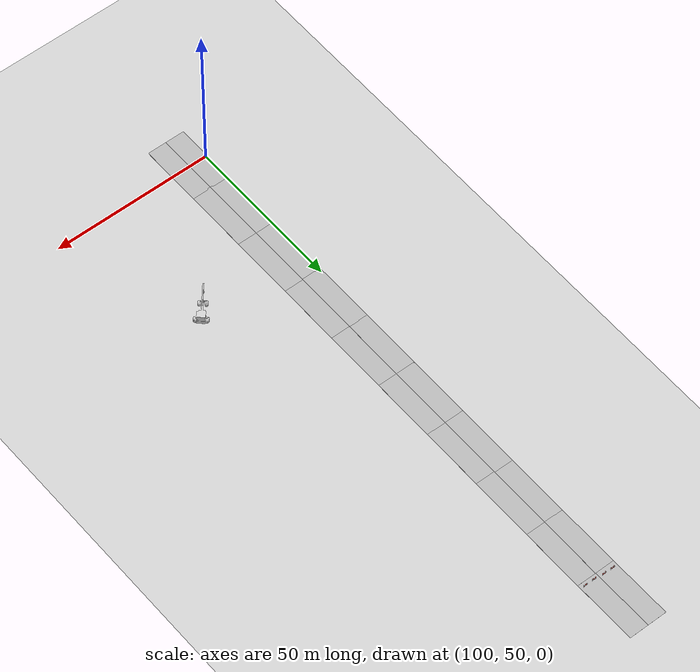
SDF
<sdf version="1.6">
 <world name="default">
  <model name="ground_plane">
   <static>1</static>
   <link name="link">
    <collision name="collision">
     <geometry><plane><normal>0 0 1</normal><size>500 500</size></plane></geometry>
     <surface><friction><ode><mu>100</mu><mu2>50</mu2></ode></friction></surface>
    </collision>
    <visual name="visual">
     <cast_shadows>0</cast_shadows>
     <geometry><plane><normal>0 0 1</normal><size>500 500</size></plane></geometry>
     <material>
      <script><uri>file://media/materials/scripts/gazebo.material</uri><name>Gazebo/Grey</name></script>
     </material>
    </visual>
   </link>
  </model>
  <model name="double_raw_road_4_clone_2_clone_clone_clone_clone_2">
   <model name="raw_road">
    <link name="link">
     <inertial>
      <mass>1</mass>
      <inertia>
       <ixx>0.166667</ixx>
       <ixy>0</ixy>
       <ixz>0</ixz>
       <iyy>0.166667</iyy>
       <iyz>0</iyz>
       <izz>0.166667</izz>
      </inertia>
     </inertial>
     <visual name="visual">
      <geometry><box><size>20 6 0.02</size></box></geometry>
      <material>
       <script>
        <name>asphalt/Diffuse</name>
        <uri>model://raw_road/materials/scripts</uri>
        <uri>model://raw_road/materials/textures</uri>
       </script>
       <shader type="vertex"><normal_map>__default__</normal_map></shader>
       <ambient>0.3 0.3 0.3 1</ambient>
       <diffuse>0.7 0.7 0.7 1</diffuse>
       <specular>0.01 0.01 0.01 1</specular>
       <emissive>0 0 0 1</emissive>
      </material>
      <pose>0 0 0.01 0 -0 0</pose>
     </visual>
     <collision name="collision">
      <pose>0 0 0.01 0 -0 0</pose>
      <geometry><box><size>20 6 0.02</size></box></geometry>
      <surface>
       <friction>
        <ode><mu>1</mu><mu2>1</mu2><fdir1>0 0 0</fdir1><slip1>0</slip1><slip2>0</slip2></ode>
        <torsional>
         <coefficient>1</coefficient>
         <patch_radius>0</patch_radius>
         <surface_radius>0</surface_radius>
         <use_patch_radius>1</use_patch_radius>
         <ode><slip>0</slip></ode>
        </torsional>
       </friction>
       <bounce><restitution_coefficient>0</restitution_coefficient><threshold>1e+06</threshold></bounce>
       <contact>
        <collide_without_contact>0</collide_without_contact>
        <collide_without_contact_bitmask>1</collide_without_contact_bitmask>
        <collide_bitmask>1</collide_bitmask>
        <ode>
         <soft_cfm>0</soft_cfm>
         <soft_erp>0.2</soft_erp>
         <kp>1e+13</kp>
         <kd>1</kd>
         <max_vel>0.01</max_vel>
         <min_depth>0</min_depth>
        </ode>
        <bullet>
         <split_impulse>1</split_impulse>
         <split_impulse_penetration_threshold>-0.01</split_impulse_penetration_threshold>
         <soft_cfm>0</soft_cfm>
         <soft_erp>0.2</soft_erp>
         <kp>1e+13</kp>
         <kd>1</kd>
        </bullet>
       </contact>
      </surface>
     </collision>
    </link>
    <static>1</static>
    <pose>0 -3.0009 0 0 -0 0</pose>
   </model>
   <model name="raw_road_0">
    <link name="link">
     <inertial>
      <mass>1</mass>
      <inertia>
       <ixx>0.166667</ixx>
       <ixy>0</ixy>
       <ixz>0</ixz>
       <iyy>0.166667</iyy>
       <iyz>0</iyz>
       <izz>0.166667</izz>
      </inertia>
     </inertial>
     <visual name="visual">
      <geometry><box><size>20 6 0.02</size></box></geometry>
      <material>
       <script>
        <name>asphalt/Diffuse</name>
        <uri>model://raw_road/materials/scripts</uri>
        <uri>model://raw_road/materials/textures</uri>
       </script>
       <shader type="vertex"><normal_map>__default__</normal_map></shader>
       <ambient>0.3 0.3 0.3 1</ambient>
       <diffuse>0.7 0.7 0.7 1</diffuse>
       <specular>0.01 0.01 0.01 1</specular>
       <emissive>0 0 0 1</emissive>
      </material>
      <pose>0 0 0.01 0 -0 0</pose>
     </visual>
     <collision name="collision">
      <pose>0 0 0.01 0 -0 0</pose>
      <geometry><box><size>20 6 0.02</size></box></geometry>
      <surface>
       <friction>
        <ode><mu>1</mu><mu2>1</mu2><fdir1>0 0 0</fdir1><slip1>0</slip1><slip2>0</slip2></ode>
        <torsional>
         <coefficient>1</coefficient>
         <patch_radius>0</patch_radius>
         <surface_radius>0</surface_radius>
         <use_patch_radius>1</use_patch_radius>
         <ode><slip>0</slip></ode>
        </torsional>
       </friction>
       <bounce><restitution_coefficient>0</restitution_coefficient><threshold>1e+06</threshold></bounce>
       <contact>
        <collide_without_contact>0</collide_without_contact>
        <collide_without_contact_bitmask>1</collide_without_contact_bitmask>
        <collide_bitmask>1</collide_bitmask>
        <ode>
         <soft_cfm>0</soft_cfm>
         <soft_erp>0.2</soft_erp>
         <kp>1e+13</kp>
         <kd>1</kd>
         <max_vel>0.01</max_vel>
         <min_depth>0</min_depth>
        </ode>
        <bullet>
         <split_impulse>1</split_impulse>
         <split_impulse_penetration_threshold>-0.01</split_impulse_penetration_threshold>
         <soft_cfm>0</soft_cfm>
         <soft_erp>0.2</soft_erp>
         <kp>1e+13</kp>
         <kd>1</kd>
        </bullet>
       </contact>
      </surface>
     </collision>
    </link>
    <static>1</static>
    <pose>0 3.0009 0 0 -0 0</pose>
   </model>
   <static>1</static>
   <pose>105.49 49.2754 0 0 -0 1.57074</pose>
  </model>
  <model name="double_raw_road_4_clone_2_clone_clone_clone_clone_3">
   <model name="raw_road">
    <link name="link">
     <inertial>
      <mass>1</mass>
      <inertia>
       <ixx>0.166667</ixx>
       <ixy>0</ixy>
       <ixz>0</ixz>
       <iyy>0.166667</iyy>
       <iyz>0</iyz>
       <izz>0.166667</izz>
      </inertia>
     </inertial>
     <visual name="visual">
      <geometry><box><size>20 6 0.02</size></box></geometry>
      <material>
       <script>
        <name>asphalt/Diffuse</name>
        <uri>model://raw_road/materials/scripts</uri>
        <uri>model://raw_road/materials/textures</uri>
       </script>
       <shader type="vertex"><normal_map>__default__</normal_map></shader>
       <ambient>0.3 0.3 0.3 1</ambient>
       <diffuse>0.7 0.7 0.7 1</diffuse>
       <specular>0.01 0.01 0.01 1</specular>
       <emissive>0 0 0 1</emissive>
      </material>
      <pose>0 0 0.01 0 -0 0</pose>
     </visual>
     <collision name="collision">
      <pose>0 0 0.01 0 -0 0</pose>
      <geometry><box><size>20 6 0.02</size></box></geometry>
      <surface>
       <friction>
        <ode><mu>1</mu><mu2>1</mu2><fdir1>0 0 0</fdir1><slip1>0</slip1><slip2>0</slip2></ode>
        <torsional>
         <coefficient>1</coefficient>
         <patch_radius>0</patch_radius>
         <surface_radius>0</surface_radius>
         <use_patch_radius>1</use_patch_radius>
         <ode><slip>0</slip></ode>
        </torsional>
       </friction>
       <bounce><restitution_coefficient>0</restitution_coefficient><threshold>1e+06</threshold></bounce>
       <contact>
        <collide_without_contact>0</collide_without_contact>
        <collide_without_contact_bitmask>1</collide_without_contact_bitmask>
        <collide_bitmask>1</collide_bitmask>
        <ode>
         <soft_cfm>0</soft_cfm>
         <soft_erp>0.2</soft_erp>
         <kp>1e+13</kp>
         <kd>1</kd>
         <max_vel>0.01</max_vel>
         <min_depth>0</min_depth>
        </ode>
        <bullet>
         <split_impulse>1</split_impulse>
         <split_impulse_penetration_threshold>-0.01</split_impulse_penetration_threshold>
         <soft_cfm>0</soft_cfm>
         <soft_erp>0.2</soft_erp>
         <kp>1e+13</kp>
         <kd>1</kd>
        </bullet>
       </contact>
      </surface>
     </collision>
    </link>
    <static>1</static>
    <pose>0 -3.0009 0 0 -0 0</pose>
   </model>
   <model name="raw_road_0">
    <link name="link">
     <inertial>
      <mass>1</mass>
      <inertia>
       <ixx>0.166667</ixx>
       <ixy>0</ixy>
       <ixz>0</ixz>
       <iyy>0.166667</iyy>
       <iyz>0</iyz>
       <izz>0.166667</izz>
      </inertia>
     </inertial>
     <visual name="visual">
      <geometry><box><size>20 6 0.02</size></box></geometry>
      <material>
       <script>
        <name>asphalt/Diffuse</name>
        <uri>model://raw_road/materials/scripts</uri>
        <uri>model://raw_road/materials/textures</uri>
       </script>
       <shader type="vertex"><normal_map>__default__</normal_map></shader>
       <ambient>0.3 0.3 0.3 1</ambient>
       <diffuse>0.7 0.7 0.7 1</diffuse>
       <specular>0.01 0.01 0.01 1</specular>
       <emissive>0 0 0 1</emissive>
      </material>
      <pose>0 0 0.01 0 -0 0</pose>
     </visual>
     <collision name="collision">
      <pose>0 0 0.01 0 -0 0</pose>
      <geometry><box><size>20 6 0.02</size></box></geometry>
      <surface>
       <friction>
        <ode><mu>1</mu><mu2>1</mu2><fdir1>0 0 0</fdir1><slip1>0</slip1><slip2>0</slip2></ode>
        <torsional>
         <coefficient>1</coefficient>
         <patch_radius>0</patch_radius>
         <surface_radius>0</surface_radius>
         <use_patch_radius>1</use_patch_radius>
         <ode><slip>0</slip></ode>
        </torsional>
       </friction>
       <bounce><restitution_coefficient>0</restitution_coefficient><threshold>1e+06</threshold></bounce>
       <contact>
        <collide_without_contact>0</collide_without_contact>
        <collide_without_contact_bitmask>1</collide_without_contact_bitmask>
        <collide_bitmask>1</collide_bitmask>
        <ode>
         <soft_cfm>0</soft_cfm>
         <soft_erp>0.2</soft_erp>
         <kp>1e+13</kp>
         <kd>1</kd>
         <max_vel>0.01</max_vel>
         <min_depth>0</min_depth>
        </ode>
        <bullet>
         <split_impulse>1</split_impulse>
         <split_impulse_penetration_threshold>-0.01</split_impulse_penetration_threshold>
         <soft_cfm>0</soft_cfm>
         <soft_erp>0.2</soft_erp>
         <kp>1e+13</kp>
         <kd>1</kd>
        </bullet>
       </contact>
      </surface>
     </collision>
    </link>
    <static>1</static>
    <pose>0 3.0009 0 0 -0 0</pose>
   </model>
   <static>1</static>
   <pose>105.49 68.9204 0 0 -0 1.57074</pose>
  </model>
  <model name="double_raw_road_4_clone_2_clone_clone_clone_clone_4">
   <model name="raw_road">
    <link name="link">
     <inertial>
      <mass>1</mass>
      <inertia>
       <ixx>0.166667</ixx>
       <ixy>0</ixy>
       <ixz>0</ixz>
       <iyy>0.166667</iyy>
       <iyz>0</iyz>
       <izz>0.166667</izz>
      </inertia>
     </inertial>
     <visual name="visual">
      <geometry><box><size>20 6 0.02</size></box></geometry>
      <material>
       <script>
        <name>asphalt/Diffuse</name>
        <uri>model://raw_road/materials/scripts</uri>
        <uri>model://raw_road/materials/textures</uri>
       </script>
       <shader type="vertex"><normal_map>__default__</normal_map></shader>
       <ambient>0.3 0.3 0.3 1</ambient>
       <diffuse>0.7 0.7 0.7 1</diffuse>
       <specular>0.01 0.01 0.01 1</specular>
       <emissive>0 0 0 1</emissive>
      </material>
      <pose>0 0 0.01 0 -0 0</pose>
     </visual>
     <collision name="collision">
      <pose>0 0 0.01 0 -0 0</pose>
      <geometry><box><size>20 6 0.02</size></box></geometry>
      <surface>
       <friction>
        <ode><mu>1</mu><mu2>1</mu2><fdir1>0 0 0</fdir1><slip1>0</slip1><slip2>0</slip2></ode>
        <torsional>
         <coefficient>1</coefficient>
         <patch_radius>0</patch_radius>
         <surface_radius>0</surface_radius>
         <use_patch_radius>1</use_patch_radius>
         <ode><slip>0</slip></ode>
        </torsional>
       </friction>
       <bounce><restitution_coefficient>0</restitution_coefficient><threshold>1e+06</threshold></bounce>
       <contact>
        <collide_without_contact>0</collide_without_contact>
        <collide_without_contact_bitmask>1</collide_without_contact_bitmask>
        <collide_bitmask>1</collide_bitmask>
        <ode>
         <soft_cfm>0</soft_cfm>
         <soft_erp>0.2</soft_erp>
         <kp>1e+13</kp>
         <kd>1</kd>
         <max_vel>0.01</max_vel>
         <min_depth>0</min_depth>
        </ode>
        <bullet>
         <split_impulse>1</split_impulse>
         <split_impulse_penetration_threshold>-0.01</split_impulse_penetration_threshold>
         <soft_cfm>0</soft_cfm>
         <soft_erp>0.2</soft_erp>
         <kp>1e+13</kp>
         <kd>1</kd>
        </bullet>
       </contact>
      </surface>
     </collision>
    </link>
    <static>1</static>
    <pose>0 -3.0009 0 0 -0 0</pose>
   </model>
   <model name="raw_road_0">
    <link name="link">
     <inertial>
      <mass>1</mass>
      <inertia>
       <ixx>0.166667</ixx>
       <ixy>0</ixy>
       <ixz>0</ixz>
       <iyy>0.166667</iyy>
       <iyz>0</iyz>
       <izz>0.166667</izz>
      </inertia>
     </inertial>
     <visual name="visual">
      <geometry><box><size>20 6 0.02</size></box></geometry>
      <material>
       <script>
        <name>asphalt/Diffuse</name>
        <uri>model://raw_road/materials/scripts</uri>
        <uri>model://raw_road/materials/textures</uri>
       </script>
       <shader type="vertex"><normal_map>__default__</normal_map></shader>
       <ambient>0.3 0.3 0.3 1</ambient>
       <diffuse>0.7 0.7 0.7 1</diffuse>
       <specular>0.01 0.01 0.01 1</specular>
       <emissive>0 0 0 1</emissive>
      </material>
      <pose>0 0 0.01 0 -0 0</pose>
     </visual>
     <collision name="collision">
      <pose>0 0 0.01 0 -0 0</pose>
      <geometry><box><size>20 6 0.02</size></box></geometry>
      <surface>
       <friction>
        <ode><mu>1</mu><mu2>1</mu2><fdir1>0 0 0</fdir1><slip1>0</slip1><slip2>0</slip2></ode>
        <torsional>
         <coefficient>1</coefficient>
         <patch_radius>0</patch_radius>
         <surface_radius>0</surface_radius>
         <use_patch_radius>1</use_patch_radius>
         <ode><slip>0</slip></ode>
        </torsional>
       </friction>
       <bounce><restitution_coefficient>0</restitution_coefficient><threshold>1e+06</threshold></bounce>
       <contact>
        <collide_without_contact>0</collide_without_contact>
        <collide_without_contact_bitmask>1</collide_without_contact_bitmask>
        <collide_bitmask>1</collide_bitmask>
        <ode>
         <soft_cfm>0</soft_cfm>
         <soft_erp>0.2</soft_erp>
         <kp>1e+13</kp>
         <kd>1</kd>
         <max_vel>0.01</max_vel>
         <min_depth>0</min_depth>
        </ode>
        <bullet>
         <split_impulse>1</split_impulse>
         <split_impulse_penetration_threshold>-0.01</split_impulse_penetration_threshold>
         <soft_cfm>0</soft_cfm>
         <soft_erp>0.2</soft_erp>
         <kp>1e+13</kp>
         <kd>1</kd>
        </bullet>
       </contact>
      </surface>
     </collision>
    </link>
    <static>1</static>
    <pose>0 3.0009 0 0 -0 0</pose>
   </model>
   <static>1</static>
   <pose>105.49 88.8789 0 0 -0 1.57074</pose>
  </model>
  <model name="double_raw_road_4_clone_2_clone_clone_clone_clone_5">
   <model name="raw_road">
    <link name="link">
     <inertial>
      <mass>1</mass>
      <inertia>
       <ixx>0.166667</ixx>
       <ixy>0</ixy>
       <ixz>0</ixz>
       <iyy>0.166667</iyy>
       <iyz>0</iyz>
       <izz>0.166667</izz>
      </inertia>
     </inertial>
     <visual name="visual">
      <geometry><box><size>20 6 0.02</size></box></geometry>
      <material>
       <script>
        <name>asphalt/Diffuse</name>
        <uri>model://raw_road/materials/scripts</uri>
        <uri>model://raw_road/materials/textures</uri>
       </script>
       <shader type="vertex"><normal_map>__default__</normal_map></shader>
       <ambient>0.3 0.3 0.3 1</ambient>
       <diffuse>0.7 0.7 0.7 1</diffuse>
       <specular>0.01 0.01 0.01 1</specular>
       <emissive>0 0 0 1</emissive>
      </material>
      <pose>0 0 0.01 0 -0 0</pose>
     </visual>
     <collision name="collision">
      <pose>0 0 0.01 0 -0 0</pose>
      <geometry><box><size>20 6 0.02</size></box></geometry>
      <surface>
       <friction>
        <ode><mu>1</mu><mu2>1</mu2><fdir1>0 0 0</fdir1><slip1>0</slip1><slip2>0</slip2></ode>
        <torsional>
         <coefficient>1</coefficient>
         <patch_radius>0</patch_radius>
         <surface_radius>0</surface_radius>
         <use_patch_radius>1</use_patch_radius>
         <ode><slip>0</slip></ode>
        </torsional>
       </friction>
       <bounce><restitution_coefficient>0</restitution_coefficient><threshold>1e+06</threshold></bounce>
       <contact>
        <collide_without_contact>0</collide_without_contact>
        <collide_without_contact_bitmask>1</collide_without_contact_bitmask>
        <collide_bitmask>1</collide_bitmask>
        <ode>
         <soft_cfm>0</soft_cfm>
         <soft_erp>0.2</soft_erp>
         <kp>1e+13</kp>
         <kd>1</kd>
         <max_vel>0.01</max_vel>
         <min_depth>0</min_depth>
        </ode>
        <bullet>
         <split_impulse>1</split_impulse>
         <split_impulse_penetration_threshold>-0.01</split_impulse_penetration_threshold>
         <soft_cfm>0</soft_cfm>
         <soft_erp>0.2</soft_erp>
         <kp>1e+13</kp>
         <kd>1</kd>
        </bullet>
       </contact>
      </surface>
     </collision>
    </link>
    <static>1</static>
    <pose>0 -3.0009 0 0 -0 0</pose>
   </model>
   <model name="raw_road_0">
    <link name="link">
     <inertial>
      <mass>1</mass>
      <inertia>
       <ixx>0.166667</ixx>
       <ixy>0</ixy>
       <ixz>0</ixz>
       <iyy>0.166667</iyy>
       <iyz>0</iyz>
       <izz>0.166667</izz>
      </inertia>
     </inertial>
     <visual name="visual">
      <geometry><box><size>20 6 0.02</size></box></geometry>
      <material>
       <script>
        <name>asphalt/Diffuse</name>
        <uri>model://raw_road/materials/scripts</uri>
        <uri>model://raw_road/materials/textures</uri>
       </script>
       <shader type="vertex"><normal_map>__default__</normal_map></shader>
       <ambient>0.3 0.3 0.3 1</ambient>
       <diffuse>0.7 0.7 0.7 1</diffuse>
       <specular>0.01 0.01 0.01 1</specular>
       <emissive>0 0 0 1</emissive>
      </material>
      <pose>0 0 0.01 0 -0 0</pose>
     </visual>
     <collision name="collision">
      <pose>0 0 0.01 0 -0 0</pose>
      <geometry><box><size>20 6 0.02</size></box></geometry>
      <surface>
       <friction>
        <ode><mu>1</mu><mu2>1</mu2><fdir1>0 0 0</fdir1><slip1>0</slip1><slip2>0</slip2></ode>
        <torsional>
         <coefficient>1</coefficient>
         <patch_radius>0</patch_radius>
         <surface_radius>0</surface_radius>
         <use_patch_radius>1</use_patch_radius>
         <ode><slip>0</slip></ode>
        </torsional>
       </friction>
       <bounce><restitution_coefficient>0</restitution_coefficient><threshold>1e+06</threshold></bounce>
       <contact>
        <collide_without_contact>0</collide_without_contact>
        <collide_without_contact_bitmask>1</collide_without_contact_bitmask>
        <collide_bitmask>1</collide_bitmask>
        <ode>
         <soft_cfm>0</soft_cfm>
         <soft_erp>0.2</soft_erp>
         <kp>1e+13</kp>
         <kd>1</kd>
         <max_vel>0.01</max_vel>
         <min_depth>0</min_depth>
        </ode>
        <bullet>
         <split_impulse>1</split_impulse>
         <split_impulse_penetration_threshold>-0.01</split_impulse_penetration_threshold>
         <soft_cfm>0</soft_cfm>
         <soft_erp>0.2</soft_erp>
         <kp>1e+13</kp>
         <kd>1</kd>
        </bullet>
       </contact>
      </surface>
     </collision>
    </link>
    <static>1</static>
    <pose>0 3.0009 0 0 -0 0</pose>
   </model>
   <static>1</static>
   <pose>105.49 108.662 0 0 -0 1.57074</pose>
  </model>
  <model name="double_raw_road_4_clone_2_clone_clone_clone_clone_6">
   <model name="raw_road">
    <link name="link">
     <inertial>
      <mass>1</mass>
      <inertia>
       <ixx>0.166667</ixx>
       <ixy>0</ixy>
       <ixz>0</ixz>
       <iyy>0.166667</iyy>
       <iyz>0</iyz>
       <izz>0.166667</izz>
      </inertia>
     </inertial>
     <visual name="visual">
      <geometry><box><size>20 6 0.02</size></box></geometry>
      <material>
       <script>
        <name>asphalt/Diffuse</name>
        <uri>model://raw_road/materials/scripts</uri>
        <uri>model://raw_road/materials/textures</uri>
       </script>
       <shader type="vertex"><normal_map>__default__</normal_map></shader>
       <ambient>0.3 0.3 0.3 1</ambient>
       <diffuse>0.7 0.7 0.7 1</diffuse>
       <specular>0.01 0.01 0.01 1</specular>
       <emissive>0 0 0 1</emissive>
      </material>
      <pose>0 0 0.01 0 -0 0</pose>
     </visual>
     <collision name="collision">
      <pose>0 0 0.01 0 -0 0</pose>
      <geometry><box><size>20 6 0.02</size></box></geometry>
      <surface>
       <friction>
        <ode><mu>1</mu><mu2>1</mu2><fdir1>0 0 0</fdir1><slip1>0</slip1><slip2>0</slip2></ode>
        <torsional>
         <coefficient>1</coefficient>
         <patch_radius>0</patch_radius>
         <surface_radius>0</surface_radius>
         <use_patch_radius>1</use_patch_radius>
         <ode><slip>0</slip></ode>
        </torsional>
       </friction>
       <bounce><restitution_coefficient>0</restitution_coefficient><threshold>1e+06</threshold></bounce>
       <contact>
        <collide_without_contact>0</collide_without_contact>
        <collide_without_contact_bitmask>1</collide_without_contact_bitmask>
        <collide_bitmask>1</collide_bitmask>
        <ode>
         <soft_cfm>0</soft_cfm>
         <soft_erp>0.2</soft_erp>
         <kp>1e+13</kp>
         <kd>1</kd>
         <max_vel>0.01</max_vel>
         <min_depth>0</min_depth>
        </ode>
        <bullet>
         <split_impulse>1</split_impulse>
         <split_impulse_penetration_threshold>-0.01</split_impulse_penetration_threshold>
         <soft_cfm>0</soft_cfm>
         <soft_erp>0.2</soft_erp>
         <kp>1e+13</kp>
         <kd>1</kd>
        </bullet>
       </contact>
      </surface>
     </collision>
    </link>
    <static>1</static>
    <pose>0 -3.0009 0 0 -0 0</pose>
   </model>
   <model name="raw_road_0">
    <link name="link">
     <inertial>
      <mass>1</mass>
      <inertia>
       <ixx>0.166667</ixx>
       <ixy>0</ixy>
       <ixz>0</ixz>
       <iyy>0.166667</iyy>
       <iyz>0</iyz>
       <izz>0.166667</izz>
      </inertia>
     </inertial>
     <visual name="visual">
      <geometry><box><size>20 6 0.02</size></box></geometry>
      <material>
       <script>
        <name>asphalt/Diffuse</name>
        <uri>model://raw_road/materials/scripts</uri>
        <uri>model://raw_road/materials/textures</uri>
       </script>
       <shader type="vertex"><normal_map>__default__</normal_map></shader>
       <ambient>0.3 0.3 0.3 1</ambient>
       <diffuse>0.7 0.7 0.7 1</diffuse>
       <specular>0.01 0.01 0.01 1</specular>
       <emissive>0 0 0 1</emissive>
      </material>
      <pose>0 0 0.01 0 -0 0</pose>
     </visual>
     <collision name="collision">
      <pose>0 0 0.01 0 -0 0</pose>
      <geometry><box><size>20 6 0.02</size></box></geometry>
      <surface>
       <friction>
        <ode><mu>1</mu><mu2>1</mu2><fdir1>0 0 0</fdir1><slip1>0</slip1><slip2>0</slip2></ode>
        <torsional>
         <coefficient>1</coefficient>
         <patch_radius>0</patch_radius>
         <surface_radius>0</surface_radius>
         <use_patch_radius>1</use_patch_radius>
         <ode><slip>0</slip></ode>
        </torsional>
       </friction>
       <bounce><restitution_coefficient>0</restitution_coefficient><threshold>1e+06</threshold></bounce>
       <contact>
        <collide_without_contact>0</collide_without_contact>
        <collide_without_contact_bitmask>1</collide_without_contact_bitmask>
        <collide_bitmask>1</collide_bitmask>
        <ode>
         <soft_cfm>0</soft_cfm>
         <soft_erp>0.2</soft_erp>
         <kp>1e+13</kp>
         <kd>1</kd>
         <max_vel>0.01</max_vel>
         <min_depth>0</min_depth>
        </ode>
        <bullet>
         <split_impulse>1</split_impulse>
         <split_impulse_penetration_threshold>-0.01</split_impulse_penetration_threshold>
         <soft_cfm>0</soft_cfm>
         <soft_erp>0.2</soft_erp>
         <kp>1e+13</kp>
         <kd>1</kd>
        </bullet>
       </contact>
      </surface>
     </collision>
    </link>
    <static>1</static>
    <pose>0 3.0009 0 0 -0 0</pose>
   </model>
   <static>1</static>
   <pose>105.49 128.533 0 0 -0 1.57074</pose>
  </model>
  <model name="double_raw_road_4_clone_2_clone_clone_clone_clone_7">
   <model name="raw_road">
    <link name="link">
     <inertial>
      <mass>1</mass>
      <inertia>
       <ixx>0.166667</ixx>
       <ixy>0</ixy>
       <ixz>0</ixz>
       <iyy>0.166667</iyy>
       <iyz>0</iyz>
       <izz>0.166667</izz>
      </inertia>
     </inertial>
     <visual name="visual">
      <geometry><box><size>20 6 0.02</size></box></geometry>
      <material>
       <script>
        <name>asphalt/Diffuse</name>
        <uri>model://raw_road/materials/scripts</uri>
        <uri>model://raw_road/materials/textures</uri>
       </script>
       <shader type="vertex"><normal_map>__default__</normal_map></shader>
       <ambient>0.3 0.3 0.3 1</ambient>
       <diffuse>0.7 0.7 0.7 1</diffuse>
       <specular>0.01 0.01 0.01 1</specular>
       <emissive>0 0 0 1</emissive>
      </material>
      <pose>0 0 0.01 0 -0 0</pose>
     </visual>
     <collision name="collision">
      <pose>0 0 0.01 0 -0 0</pose>
      <geometry><box><size>20 6 0.02</size></box></geometry>
      <surface>
       <friction>
        <ode><mu>1</mu><mu2>1</mu2><fdir1>0 0 0</fdir1><slip1>0</slip1><slip2>0</slip2></ode>
        <torsional>
         <coefficient>1</coefficient>
         <patch_radius>0</patch_radius>
         <surface_radius>0</surface_radius>
         <use_patch_radius>1</use_patch_radius>
         <ode><slip>0</slip></ode>
        </torsional>
       </friction>
       <bounce><restitution_coefficient>0</restitution_coefficient><threshold>1e+06</threshold></bounce>
       <contact>
        <collide_without_contact>0</collide_without_contact>
        <collide_without_contact_bitmask>1</collide_without_contact_bitmask>
        <collide_bitmask>1</collide_bitmask>
        <ode>
         <soft_cfm>0</soft_cfm>
         <soft_erp>0.2</soft_erp>
         <kp>1e+13</kp>
         <kd>1</kd>
         <max_vel>0.01</max_vel>
         <min_depth>0</min_depth>
        </ode>
        <bullet>
         <split_impulse>1</split_impulse>
         <split_impulse_penetration_threshold>-0.01</split_impulse_penetration_threshold>
         <soft_cfm>0</soft_cfm>
         <soft_erp>0.2</soft_erp>
         <kp>1e+13</kp>
         <kd>1</kd>
        </bullet>
       </contact>
      </surface>
     </collision>
    </link>
    <static>1</static>
    <pose>0 -3.0009 0 0 -0 0</pose>
   </model>
   <model name="raw_road_0">
    <link name="link">
     <inertial>
      <mass>1</mass>
      <inertia>
       <ixx>0.166667</ixx>
       <ixy>0</ixy>
       <ixz>0</ixz>
       <iyy>0.166667</iyy>
       <iyz>0</iyz>
       <izz>0.166667</izz>
      </inertia>
     </inertial>
     <visual name="visual">
      <geometry><box><size>20 6 0.02</size></box></geometry>
      <material>
       <script>
        <name>asphalt/Diffuse</name>
        <uri>model://raw_road/materials/scripts</uri>
        <uri>model://raw_road/materials/textures</uri>
       </script>
       <shader type="vertex"><normal_map>__default__</normal_map></shader>
       <ambient>0.3 0.3 0.3 1</ambient>
       <diffuse>0.7 0.7 0.7 1</diffuse>
       <specular>0.01 0.01 0.01 1</specular>
       <emissive>0 0 0 1</emissive>
      </material>
      <pose>0 0 0.01 0 -0 0</pose>
     </visual>
     <collision name="collision">
      <pose>0 0 0.01 0 -0 0</pose>
      <geometry><box><size>20 6 0.02</size></box></geometry>
      <surface>
       <friction>
        <ode><mu>1</mu><mu2>1</mu2><fdir1>0 0 0</fdir1><slip1>0</slip1><slip2>0</slip2></ode>
        <torsional>
         <coefficient>1</coefficient>
         <patch_radius>0</patch_radius>
         <surface_radius>0</surface_radius>
         <use_patch_radius>1</use_patch_radius>
         <ode><slip>0</slip></ode>
        </torsional>
       </friction>
       <bounce><restitution_coefficient>0</restitution_coefficient><threshold>1e+06</threshold></bounce>
       <contact>
        <collide_without_contact>0</collide_without_contact>
        <collide_without_contact_bitmask>1</collide_without_contact_bitmask>
        <collide_bitmask>1</collide_bitmask>
        <ode>
         <soft_cfm>0</soft_cfm>
         <soft_erp>0.2</soft_erp>
         <kp>1e+13</kp>
         <kd>1</kd>
         <max_vel>0.01</max_vel>
         <min_depth>0</min_depth>
        </ode>
        <bullet>
         <split_impulse>1</split_impulse>
         <split_impulse_penetration_threshold>-0.01</split_impulse_penetration_threshold>
         <soft_cfm>0</soft_cfm>
         <soft_erp>0.2</soft_erp>
         <kp>1e+13</kp>
         <kd>1</kd>
        </bullet>
       </contact>
      </surface>
     </collision>
    </link>
    <static>1</static>
    <pose>0 3.0009 0 0 -0 0</pose>
   </model>
   <static>1</static>
   <pose>105.49 148.094 0 0 -0 1.57074</pose>
  </model>
  <model name="double_raw_road_4_clone_2_clone_clone_clone_clone_8">
   <model name="raw_road">
    <link name="link">
     <inertial>
      <mass>1</mass>
      <inertia>
       <ixx>0.166667</ixx>
       <ixy>0</ixy>
       <ixz>0</ixz>
       <iyy>0.166667</iyy>
       <iyz>0</iyz>
       <izz>0.166667</izz>
      </inertia>
     </inertial>
     <visual name="visual">
      <geometry><box><size>20 6 0.02</size></box></geometry>
      <material>
       <script>
        <name>asphalt/Diffuse</name>
        <uri>model://raw_road/materials/scripts</uri>
        <uri>model://raw_road/materials/textures</uri>
       </script>
       <shader type="vertex"><normal_map>__default__</normal_map></shader>
       <ambient>0.3 0.3 0.3 1</ambient>
       <diffuse>0.7 0.7 0.7 1</diffuse>
       <specular>0.01 0.01 0.01 1</specular>
       <emissive>0 0 0 1</emissive>
      </material>
      <pose>0 0 0.01 0 -0 0</pose>
     </visual>
     <collision name="collision">
      <pose>0 0 0.01 0 -0 0</pose>
      <geometry><box><size>20 6 0.02</size></box></geometry>
      <surface>
       <friction>
        <ode><mu>1</mu><mu2>1</mu2><fdir1>0 0 0</fdir1><slip1>0</slip1><slip2>0</slip2></ode>
        <torsional>
         <coefficient>1</coefficient>
         <patch_radius>0</patch_radius>
         <surface_radius>0</surface_radius>
         <use_patch_radius>1</use_patch_radius>
         <ode><slip>0</slip></ode>
        </torsional>
       </friction>
       <bounce><restitution_coefficient>0</restitution_coefficient><threshold>1e+06</threshold></bounce>
       <contact>
        <collide_without_contact>0</collide_without_contact>
        <collide_without_contact_bitmask>1</collide_without_contact_bitmask>
        <collide_bitmask>1</collide_bitmask>
        <ode>
         <soft_cfm>0</soft_cfm>
         <soft_erp>0.2</soft_erp>
         <kp>1e+13</kp>
         <kd>1</kd>
         <max_vel>0.01</max_vel>
         <min_depth>0</min_depth>
        </ode>
        <bullet>
         <split_impulse>1</split_impulse>
         <split_impulse_penetration_threshold>-0.01</split_impulse_penetration_threshold>
         <soft_cfm>0</soft_cfm>
         <soft_erp>0.2</soft_erp>
         <kp>1e+13</kp>
         <kd>1</kd>
        </bullet>
       </contact>
      </surface>
     </collision>
    </link>
    <static>1</static>
    <pose>0 -3.0009 0 0 -0 0</pose>
   </model>
   <model name="raw_road_0">
    <link name="link">
     <inertial>
      <mass>1</mass>
      <inertia>
       <ixx>0.166667</ixx>
       <ixy>0</ixy>
       <ixz>0</ixz>
       <iyy>0.166667</iyy>
       <iyz>0</iyz>
       <izz>0.166667</izz>
      </inertia>
     </inertial>
     <visual name="visual">
      <geometry><box><size>20 6 0.02</size></box></geometry>
      <material>
       <script>
        <name>asphalt/Diffuse</name>
        <uri>model://raw_road/materials/scripts</uri>
        <uri>model://raw_road/materials/textures</uri>
       </script>
       <shader type="vertex"><normal_map>__default__</normal_map></shader>
       <ambient>0.3 0.3 0.3 1</ambient>
       <diffuse>0.7 0.7 0.7 1</diffuse>
       <specular>0.01 0.01 0.01 1</specular>
       <emissive>0 0 0 1</emissive>
      </material>
      <pose>0 0 0.01 0 -0 0</pose>
     </visual>
     <collision name="collision">
      <pose>0 0 0.01 0 -0 0</pose>
      <geometry><box><size>20 6 0.02</size></box></geometry>
      <surface>
       <friction>
        <ode><mu>1</mu><mu2>1</mu2><fdir1>0 0 0</fdir1><slip1>0</slip1><slip2>0</slip2></ode>
        <torsional>
         <coefficient>1</coefficient>
         <patch_radius>0</patch_radius>
         <surface_radius>0</surface_radius>
         <use_patch_radius>1</use_patch_radius>
         <ode><slip>0</slip></ode>
        </torsional>
       </friction>
       <bounce><restitution_coefficient>0</restitution_coefficient><threshold>1e+06</threshold></bounce>
       <contact>
        <collide_without_contact>0</collide_without_contact>
        <collide_without_contact_bitmask>1</collide_without_contact_bitmask>
        <collide_bitmask>1</collide_bitmask>
        <ode>
         <soft_cfm>0</soft_cfm>
         <soft_erp>0.2</soft_erp>
         <kp>1e+13</kp>
         <kd>1</kd>
         <max_vel>0.01</max_vel>
         <min_depth>0</min_depth>
        </ode>
        <bullet>
         <split_impulse>1</split_impulse>
         <split_impulse_penetration_threshold>-0.01</split_impulse_penetration_threshold>
         <soft_cfm>0</soft_cfm>
         <soft_erp>0.2</soft_erp>
         <kp>1e+13</kp>
         <kd>1</kd>
        </bullet>
       </contact>
      </surface>
     </collision>
    </link>
    <static>1</static>
    <pose>0 3.0009 0 0 -0 0</pose>
   </model>
   <static>1</static>
   <pose>105.49 168.01 0 0 -0 1.57074</pose>
  </model>
  <model name="double_raw_road_4_clone_2_clone_clone_clone_clone_9">
   <model name="raw_road">
    <link name="link">
     <inertial>
      <mass>1</mass>
      <inertia>
       <ixx>0.166667</ixx>
       <ixy>0</ixy>
       <ixz>0</ixz>
       <iyy>0.166667</iyy>
       <iyz>0</iyz>
       <izz>0.166667</izz>
      </inertia>
     </inertial>
     <visual name="visual">
      <geometry><box><size>20 6 0.02</size></box></geometry>
      <material>
       <script>
        <name>asphalt/Diffuse</name>
        <uri>model://raw_road/materials/scripts</uri>
        <uri>model://raw_road/materials/textures</uri>
       </script>
       <shader type="vertex"><normal_map>__default__</normal_map></shader>
       <ambient>0.3 0.3 0.3 1</ambient>
       <diffuse>0.7 0.7 0.7 1</diffuse>
       <specular>0.01 0.01 0.01 1</specular>
       <emissive>0 0 0 1</emissive>
      </material>
      <pose>0 0 0.01 0 -0 0</pose>
     </visual>
     <collision name="collision">
      <pose>0 0 0.01 0 -0 0</pose>
      <geometry><box><size>20 6 0.02</size></box></geometry>
      <surface>
       <friction>
        <ode><mu>1</mu><mu2>1</mu2><fdir1>0 0 0</fdir1><slip1>0</slip1><slip2>0</slip2></ode>
        <torsional>
         <coefficient>1</coefficient>
         <patch_radius>0</patch_radius>
         <surface_radius>0</surface_radius>
         <use_patch_radius>1</use_patch_radius>
         <ode><slip>0</slip></ode>
        </torsional>
       </friction>
       <bounce><restitution_coefficient>0</restitution_coefficient><threshold>1e+06</threshold></bounce>
       <contact>
        <collide_without_contact>0</collide_without_contact>
        <collide_without_contact_bitmask>1</collide_without_contact_bitmask>
        <collide_bitmask>1</collide_bitmask>
        <ode>
         <soft_cfm>0</soft_cfm>
         <soft_erp>0.2</soft_erp>
         <kp>1e+13</kp>
         <kd>1</kd>
         <max_vel>0.01</max_vel>
         <min_depth>0</min_depth>
        </ode>
        <bullet>
         <split_impulse>1</split_impulse>
         <split_impulse_penetration_threshold>-0.01</split_impulse_penetration_threshold>
         <soft_cfm>0</soft_cfm>
         <soft_erp>0.2</soft_erp>
         <kp>1e+13</kp>
         <kd>1</kd>
        </bullet>
       </contact>
      </surface>
     </collision>
    </link>
    <static>1</static>
    <pose>0 -3.0009 0 0 -0 0</pose>
   </model>
   <model name="raw_road_0">
    <link name="link">
     <inertial>
      <mass>1</mass>
      <inertia>
       <ixx>0.166667</ixx>
       <ixy>0</ixy>
       <ixz>0</ixz>
       <iyy>0.166667</iyy>
       <iyz>0</iyz>
       <izz>0.166667</izz>
      </inertia>
     </inertial>
     <visual name="visual">
      <geometry><box><size>20 6 0.02</size></box></geometry>
      <material>
       <script>
        <name>asphalt/Diffuse</name>
        <uri>model://raw_road/materials/scripts</uri>
        <uri>model://raw_road/materials/textures</uri>
       </script>
       <shader type="vertex"><normal_map>__default__</normal_map></shader>
       <ambient>0.3 0.3 0.3 1</ambient>
       <diffuse>0.7 0.7 0.7 1</diffuse>
       <specular>0.01 0.01 0.01 1</specular>
       <emissive>0 0 0 1</emissive>
      </material>
      <pose>0 0 0.01 0 -0 0</pose>
     </visual>
     <collision name="collision">
      <pose>0 0 0.01 0 -0 0</pose>
      <geometry><box><size>20 6 0.02</size></box></geometry>
      <surface>
       <friction>
        <ode><mu>1</mu><mu2>1</mu2><fdir1>0 0 0</fdir1><slip1>0</slip1><slip2>0</slip2></ode>
        <torsional>
         <coefficient>1</coefficient>
         <patch_radius>0</patch_radius>
         <surface_radius>0</surface_radius>
         <use_patch_radius>1</use_patch_radius>
         <ode><slip>0</slip></ode>
        </torsional>
       </friction>
       <bounce><restitution_coefficient>0</restitution_coefficient><threshold>1e+06</threshold></bounce>
       <contact>
        <collide_without_contact>0</collide_without_contact>
        <collide_without_contact_bitmask>1</collide_without_contact_bitmask>
        <collide_bitmask>1</collide_bitmask>
        <ode>
         <soft_cfm>0</soft_cfm>
         <soft_erp>0.2</soft_erp>
         <kp>1e+13</kp>
         <kd>1</kd>
         <max_vel>0.01</max_vel>
         <min_depth>0</min_depth>
        </ode>
        <bullet>
         <split_impulse>1</split_impulse>
         <split_impulse_penetration_threshold>-0.01</split_impulse_penetration_threshold>
         <soft_cfm>0</soft_cfm>
         <soft_erp>0.2</soft_erp>
         <kp>1e+13</kp>
         <kd>1</kd>
        </bullet>
       </contact>
      </surface>
     </collision>
    </link>
    <static>1</static>
    <pose>0 3.0009 0 0 -0 0</pose>
   </model>
   <static>1</static>
   <pose>105.49 187.75 0 0 -0 1.57074</pose>
  </model>
  <model name="double_raw_road_4_clone_2_clone_clone_clone_clone_10">
   <model name="raw_road">
    <link name="link">
     <inertial>
      <mass>1</mass>
      <inertia>
       <ixx>0.166667</ixx>
       <ixy>0</ixy>
       <ixz>0</ixz>
       <iyy>0.166667</iyy>
       <iyz>0</iyz>
       <izz>0.166667</izz>
      </inertia>
     </inertial>
     <visual name="visual">
      <geometry><box><size>20 6 0.02</size></box></geometry>
      <material>
       <script>
        <name>asphalt/Diffuse</name>
        <uri>model://raw_road/materials/scripts</uri>
        <uri>model://raw_road/materials/textures</uri>
       </script>
       <shader type="vertex"><normal_map>__default__</normal_map></shader>
       <ambient>0.3 0.3 0.3 1</ambient>
       <diffuse>0.7 0.7 0.7 1</diffuse>
       <specular>0.01 0.01 0.01 1</specular>
       <emissive>0 0 0 1</emissive>
      </material>
      <pose>0 0 0.01 0 -0 0</pose>
     </visual>
     <collision name="collision">
      <pose>0 0 0.01 0 -0 0</pose>
      <geometry><box><size>20 6 0.02</size></box></geometry>
      <surface>
       <friction>
        <ode><mu>1</mu><mu2>1</mu2><fdir1>0 0 0</fdir1><slip1>0</slip1><slip2>0</slip2></ode>
        <torsional>
         <coefficient>1</coefficient>
         <patch_radius>0</patch_radius>
         <surface_radius>0</surface_radius>
         <use_patch_radius>1</use_patch_radius>
         <ode><slip>0</slip></ode>
        </torsional>
       </friction>
       <bounce><restitution_coefficient>0</restitution_coefficient><threshold>1e+06</threshold></bounce>
       <contact>
        <collide_without_contact>0</collide_without_contact>
        <collide_without_contact_bitmask>1</collide_without_contact_bitmask>
        <collide_bitmask>1</collide_bitmask>
        <ode>
         <soft_cfm>0</soft_cfm>
         <soft_erp>0.2</soft_erp>
         <kp>1e+13</kp>
         <kd>1</kd>
         <max_vel>0.01</max_vel>
         <min_depth>0</min_depth>
        </ode>
        <bullet>
         <split_impulse>1</split_impulse>
         <split_impulse_penetration_threshold>-0.01</split_impulse_penetration_threshold>
         <soft_cfm>0</soft_cfm>
         <soft_erp>0.2</soft_erp>
         <kp>1e+13</kp>
         <kd>1</kd>
        </bullet>
       </contact>
      </surface>
     </collision>
    </link>
    <static>1</static>
    <pose>0 -3.0009 0 0 -0 0</pose>
   </model>
   <model name="raw_road_0">
    <link name="link">
     <inertial>
      <mass>1</mass>
      <inertia>
       <ixx>0.166667</ixx>
       <ixy>0</ixy>
       <ixz>0</ixz>
       <iyy>0.166667</iyy>
       <iyz>0</iyz>
       <izz>0.166667</izz>
      </inertia>
     </inertial>
     <visual name="visual">
      <geometry><box><size>20 6 0.02</size></box></geometry>
      <material>
       <script>
        <name>asphalt/Diffuse</name>
        <uri>model://raw_road/materials/scripts</uri>
        <uri>model://raw_road/materials/textures</uri>
       </script>
       <shader type="vertex"><normal_map>__default__</normal_map></shader>
       <ambient>0.3 0.3 0.3 1</ambient>
       <diffuse>0.7 0.7 0.7 1</diffuse>
       <specular>0.01 0.01 0.01 1</specular>
       <emissive>0 0 0 1</emissive>
      </material>
      <pose>0 0 0.01 0 -0 0</pose>
     </visual>
     <collision name="collision">
      <pose>0 0 0.01 0 -0 0</pose>
      <geometry><box><size>20 6 0.02</size></box></geometry>
      <surface>
       <friction>
        <ode><mu>1</mu><mu2>1</mu2><fdir1>0 0 0</fdir1><slip1>0</slip1><slip2>0</slip2></ode>
        <torsional>
         <coefficient>1</coefficient>
         <patch_radius>0</patch_radius>
         <surface_radius>0</surface_radius>
         <use_patch_radius>1</use_patch_radius>
         <ode><slip>0</slip></ode>
        </torsional>
       </friction>
       <bounce><restitution_coefficient>0</restitution_coefficient><threshold>1e+06</threshold></bounce>
       <contact>
        <collide_without_contact>0</collide_without_contact>
        <collide_without_contact_bitmask>1</collide_without_contact_bitmask>
        <collide_bitmask>1</collide_bitmask>
        <ode>
         <soft_cfm>0</soft_cfm>
         <soft_erp>0.2</soft_erp>
         <kp>1e+13</kp>
         <kd>1</kd>
         <max_vel>0.01</max_vel>
         <min_depth>0</min_depth>
        </ode>
        <bullet>
         <split_impulse>1</split_impulse>
         <split_impulse_penetration_threshold>-0.01</split_impulse_penetration_threshold>
         <soft_cfm>0</soft_cfm>
         <soft_erp>0.2</soft_erp>
         <kp>1e+13</kp>
         <kd>1</kd>
        </bullet>
       </contact>
      </surface>
     </collision>
    </link>
    <static>1</static>
    <pose>0 3.0009 0 0 -0 0</pose>
   </model>
   <static>1</static>
   <pose>105.49 207.653 0 0 -0 1.57074</pose>
  </model>
  <model name="double_straight_road_0">
   <model name="straight_road">
    <link name="link">
     <inertial>
      <mass>1</mass>
      <inertia>
       <ixx>0.166667</ixx>
       <ixy>0</ixy>
       <ixz>0</ixz>
       <iyy>0.166667</iyy>
       <iyz>0</iyz>
       <izz>0.166667</izz>
      </inertia>
     </inertial>
     <visual name="visual">
      <geometry><box><size>20 6 0.02</size></box></geometry>
      <material>
       <script>
        <name>simple_road/Diffuse</name>
        <uri>model://double_straight_road/materials/scripts</uri>
        <uri>model://double_straight_road/materials/textures</uri>
       </script>
       <shader type="vertex"><normal_map>__default__</normal_map></shader>
       <ambient>0.3 0.3 0.3 1</ambient>
       <diffuse>0.7 0.7 0.7 1</diffuse>
       <specular>0.01 0.01 0.01 1</specular>
       <emissive>0 0 0 1</emissive>
      </material>
      <pose>0 0 0.01 0 -0 0</pose>
     </visual>
     <collision name="collision">
      <pose>0 0 0.01 0 -0 0</pose>
      <geometry><box><size>20 6 0.02</size></box></geometry>
      <surface>
       <friction>
        <ode><mu>1</mu><mu2>1</mu2><fdir1>0 0 0</fdir1><slip1>0</slip1><slip2>0</slip2></ode>
        <torsional>
         <coefficient>1</coefficient>
         <patch_radius>0</patch_radius>
         <surface_radius>0</surface_radius>
         <use_patch_radius>1</use_patch_radius>
         <ode><slip>0</slip></ode>
        </torsional>
       </friction>
       <bounce><restitution_coefficient>0</restitution_coefficient><threshold>1e+06</threshold></bounce>
       <contact>
        <collide_without_contact>0</collide_without_contact>
        <collide_without_contact_bitmask>1</collide_without_contact_bitmask>
        <collide_bitmask>1</collide_bitmask>
        <ode>
         <soft_cfm>0</soft_cfm>
         <soft_erp>0.2</soft_erp>
         <kp>1e+13</kp>
         <kd>1</kd>
         <max_vel>0.01</max_vel>
         <min_depth>0</min_depth>
        </ode>
        <bullet>
         <split_impulse>1</split_impulse>
         <split_impulse_penetration_threshold>-0.01</split_impulse_penetration_threshold>
         <soft_cfm>0</soft_cfm>
         <soft_erp>0.2</soft_erp>
         <kp>1e+13</kp>
         <kd>1</kd>
        </bullet>
       </contact>
      </surface>
     </collision>
    </link>
    <static>1</static>
    <pose>0 -3.0009 0 0 -0 0</pose>
   </model>
   <model name="straight_road_0">
    <link name="link">
     <inertial>
      <mass>1</mass>
      <inertia>
       <ixx>0.166667</ixx>
       <ixy>0</ixy>
       <ixz>0</ixz>
       <iyy>0.166667</iyy>
       <iyz>0</iyz>
       <izz>0.166667</izz>
      </inertia>
     </inertial>
     <visual name="visual">
      <geometry><box><size>20 6 0.02</size></box></geometry>
      <material>
       <script>
        <name>simple_road/Diffuse</name>
        <uri>model://double_straight_road/materials/scripts</uri>
        <uri>model://double_straight_road/materials/textures</uri>
       </script>
       <shader type="vertex"><normal_map>__default__</normal_map></shader>
       <ambient>0.3 0.3 0.3 1</ambient>
       <diffuse>0.7 0.7 0.7 1</diffuse>
       <specular>0.01 0.01 0.01 1</specular>
       <emissive>0 0 0 1</emissive>
      </material>
      <pose>0 0 0.01 0 -0 0</pose>
     </visual>
     <collision name="collision">
      <pose>0 0 0.01 0 -0 0</pose>
      <geometry><box><size>20 6 0.02</size></box></geometry>
      <surface>
       <friction>
        <ode><mu>1</mu><mu2>1</mu2><fdir1>0 0 0</fdir1><slip1>0</slip1><slip2>0</slip2></ode>
        <torsional>
         <coefficient>1</coefficient>
         <patch_radius>0</patch_radius>
         <surface_radius>0</surface_radius>
         <use_patch_radius>1</use_patch_radius>
         <ode><slip>0</slip></ode>
        </torsional>
       </friction>
       <bounce><restitution_coefficient>0</restitution_coefficient><threshold>1e+06</threshold></bounce>
       <contact>
        <collide_without_contact>0</collide_without_contact>
        <collide_without_contact_bitmask>1</collide_without_contact_bitmask>
        <collide_bitmask>1</collide_bitmask>
        <ode>
         <soft_cfm>0</soft_cfm>
         <soft_erp>0.2</soft_erp>
         <kp>1e+13</kp>
         <kd>1</kd>
         <max_vel>0.01</max_vel>
         <min_depth>0</min_depth>
        </ode>
        <bullet>
         <split_impulse>1</split_impulse>
         <split_impulse_penetration_threshold>-0.01</split_impulse_penetration_threshold>
         <soft_cfm>0</soft_cfm>
         <soft_erp>0.2</soft_erp>
         <kp>1e+13</kp>
         <kd>1</kd>
        </bullet>
       </contact>
      </surface>
     </collision>
    </link>
    <static>1</static>
    <pose>0 3.0009 0 0 -0 0</pose>
   </model>
   <static>1</static>
   <pose>105.362 227.623 0 0 0 -1.56147</pose>
  </model>
  <model name="roadbarrier_0">
   <static>1</static>
   <link name="link">
    <collision name="collision">
     <geometry><mesh><scale>1 1 1</scale><uri>model://roadbarrier/meshes/roadbarrier.dae</uri></mesh></geometry>
    </collision>
    <visual name="visual">
     <geometry><mesh><scale>1 1 1</scale><uri>model://roadbarrier/meshes/roadbarrier.dae</uri></mesh></geometry>
    </visual>
   </link>
   <pose>109.973 218.862 -0.020038 0 0 -3.07525</pose>
  </model>
  <model name="roadbarrier_0_clone">
   <static>1</static>
   <link name="link">
    <collision name="collision">
     <geometry><mesh><scale>1 1 1</scale><uri>model://roadbarrier/meshes/roadbarrier.dae</uri></mesh></geometry>
    </collision>
    <visual name="visual">
     <geometry><mesh><scale>1 1 1</scale><uri>model://roadbarrier/meshes/roadbarrier.dae</uri></mesh></geometry>
    </visual>
   </link>
   <pose>107.047 218.834 -0.020038 0 -0 3.10329</pose>
  </model>
  <model name="roadbarrier_0_clone_0">
   <static>1</static>
   <link name="link">
    <collision name="collision">
     <geometry><mesh><scale>1 1 1</scale><uri>model://roadbarrier/meshes/roadbarrier.dae</uri></mesh></geometry>
    </collision>
    <visual name="visual">
     <geometry><mesh><scale>1 1 1</scale><uri>model://roadbarrier/meshes/roadbarrier.dae</uri></mesh></geometry>
    </visual>
   </link>
   <pose>104.008 219.199 -0.020038 0 0 -3.09724</pose>
  </model>
  <model name="roadbarrier_0_clone_1">
   <static>1</static>
   <link name="link">
    <collision name="collision">
     <geometry><mesh><scale>1 1 1</scale><uri>model://roadbarrier/meshes/roadbarrier.dae</uri></mesh></geometry>
    </collision>
    <visual name="visual">
     <geometry><mesh><scale>1 1 1</scale><uri>model://roadbarrier/meshes/roadbarrier.dae</uri></mesh></geometry>
    </visual>
   </link>
   <pose>101.161 219.206 -0.020038 0 -0 3.1045</pose>
  </model>
  <model name="crane">
   <static>1</static>
   <link name="link">
    <collision name="collision">
     <geometry><mesh><scale>0.5 0.5 0.5</scale><uri>model://crane/meshes/crane.dae</uri></mesh></geometry>
    </collision>
    <visual name="visual">
     <geometry><mesh><scale>0.5 0.5 0.5</scale><uri>model://crane/meshes/crane.dae</uri></mesh></geometry>
    </visual>
   </link>
   <pose>133.081 90.7579 0 0 -0 0.82368</pose>
  </model>
 </world>
</sdf>
